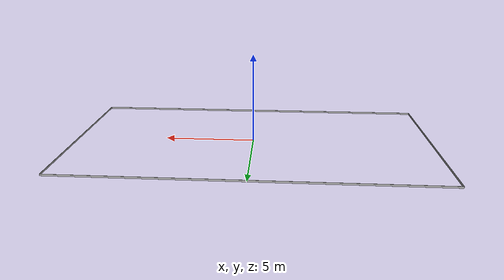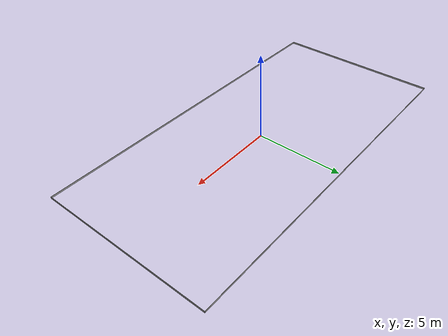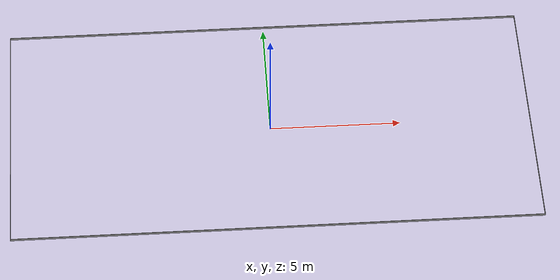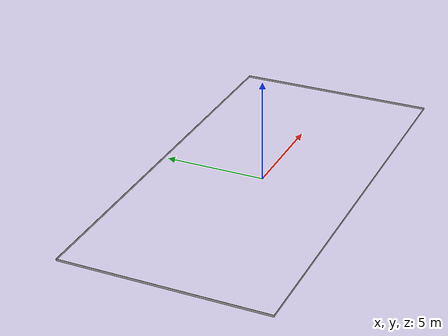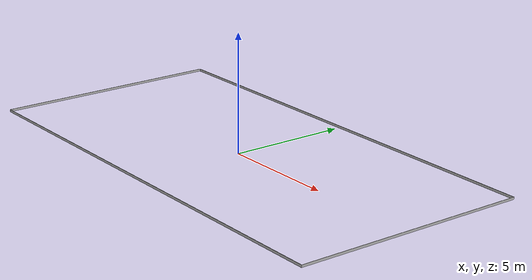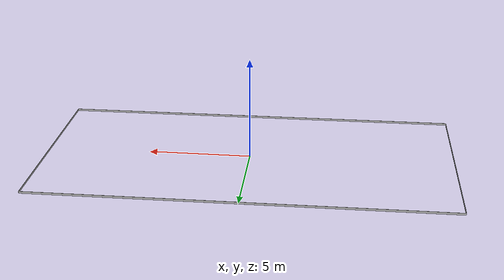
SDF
<?xml version='1.0'?>
<sdf version='1.6'>
  <model name='cage_2'>
    <pose frame=''>0.023125 0.149044 0 0 -0 0</pose>
    <link name='Wall_11'>
      <collision name='Wall_11_Collision'>
        <geometry>
          <box>
            <size>20 0.01 0.1</size>
          </box>
        </geometry>
        <pose frame=''>0 0 0.1 0 -0 0</pose>
      </collision>
      <visual name='Wall_11_Visual'>
        <pose frame=''>0 0 0.1 0 -0 0</pose>
        <geometry>
          <box>
            <size>20 0.01 0.1</size>
          </box>
        </geometry>
	    <material>
		<script>
			<uri>model://cage/materials/scripts</uri>
			<uri>model://cage/materials/textures</uri>
			<name>border</name>
		</script>
	    </material>
        <meta>
          <layer>0</layer>
        </meta>
      </visual>
      <pose frame=''>0 -5 0 0 -0 -3.14158</pose>
    </link>
    <link name='Wall_14'>
      <collision name='Wall_14_Collision'>
        <geometry>
          <box>
            <size>10 0.01 0.1</size>
          </box>
        </geometry>
        <pose frame=''>0 0 0.1 0 -0 0</pose>
      </collision>
      <visual name='Wall_14_Visual'>
        <pose frame=''>0 0 0.1 0 -0 0</pose>
        <geometry>
          <box>
            <size>10 0.01 0.1</size>
          </box>
        </geometry>
	    <material>
		<script>
			<uri>model://cage/materials/scripts</uri>
			<uri>model://cage/materials/textures</uri>
			<name>border</name>
		</script>
	    </material>
        <meta>
          <layer>0</layer>
        </meta>
      </visual>
      <pose frame=''>-10 0 0 0 -0 1.5708</pose>
    </link>
    <link name='Wall_6'>
      <collision name='Wall_6_Collision'>
        <geometry>
          <box>
            <size>20 0.01 0.1</size>
          </box>
        </geometry>
        <pose frame=''>0 0 0.1 0 -0 0</pose>
      </collision>
      <visual name='Wall_6_Visual'>
        <pose frame=''>0 0 0.1 0 -0 0</pose>
        <geometry>
          <box>
            <size>20 0.01 0.1</size>
          </box>
        </geometry>
	    <material>
		<script>
			<uri>model://cage/materials/scripts</uri>
			<uri>model://cage/materials/textures</uri>
			<name>border</name>
		</script>
	    </material>
        <meta>
          <layer>0</layer>
        </meta>
      </visual>
      <pose frame=''>0 5 0 0 -0 0</pose>
    </link>
    <link name='Wall_9'>
      <collision name='Wall_9_Collision'>
        <geometry>
          <box>
            <size>10 0.01 0.1</size>
          </box>
        </geometry>
        <pose frame=''>0 0 0.1 0 -0 0</pose>
      </collision>
      <visual name='Wall_9_Visual'>
        <pose frame=''>0 0 0.1 0 -0 0</pose>
        <geometry>
          <box>
            <size>10 0.01 0.1</size>
          </box>
        </geometry>
	    <material>
		<script>
			<uri>model://cage/materials/scripts</uri>
			<uri>model://cage/materials/textures</uri>
			<name>border</name>
		</script>
	    </material>
        <meta>
          <layer>0</layer>
        </meta>
      </visual>
      <pose frame=''>10 0 0 0 -0 -1.57078</pose>
    </link>
    <static>1</static>
  </model>
</sdf>
